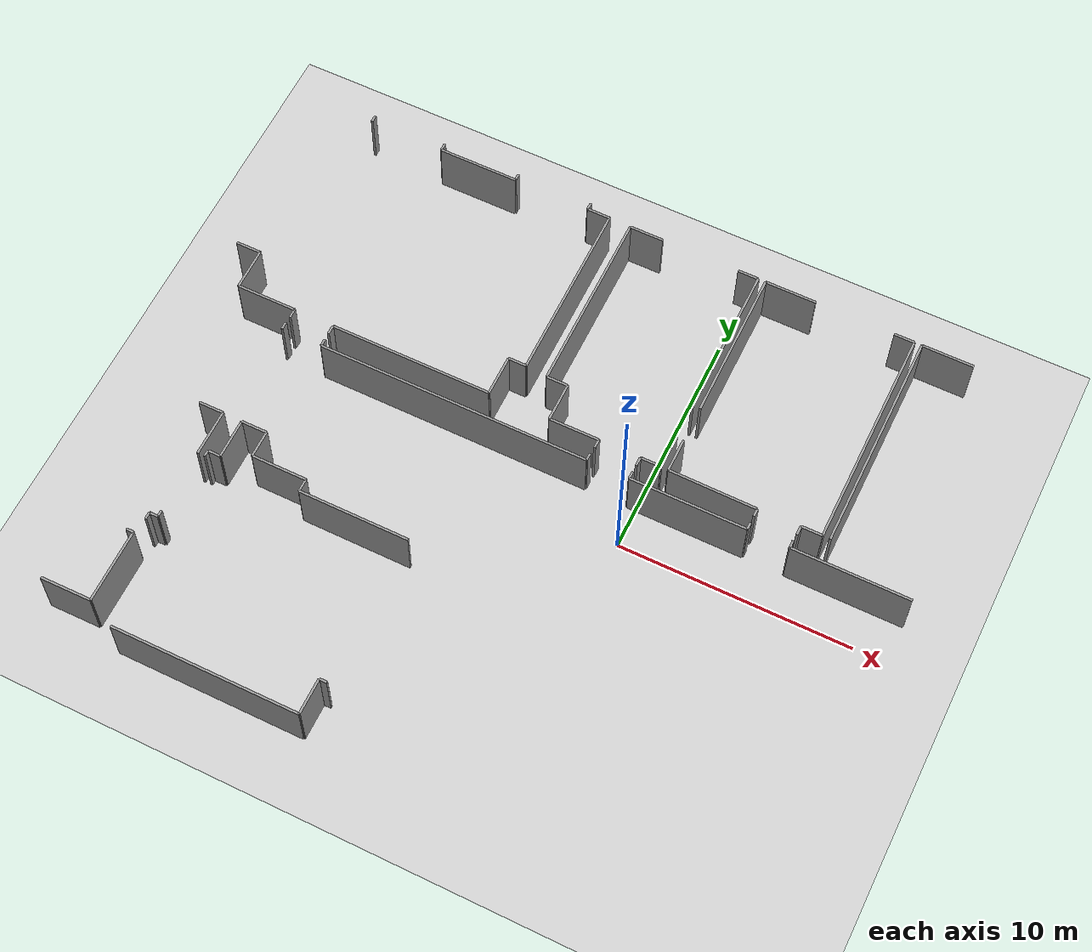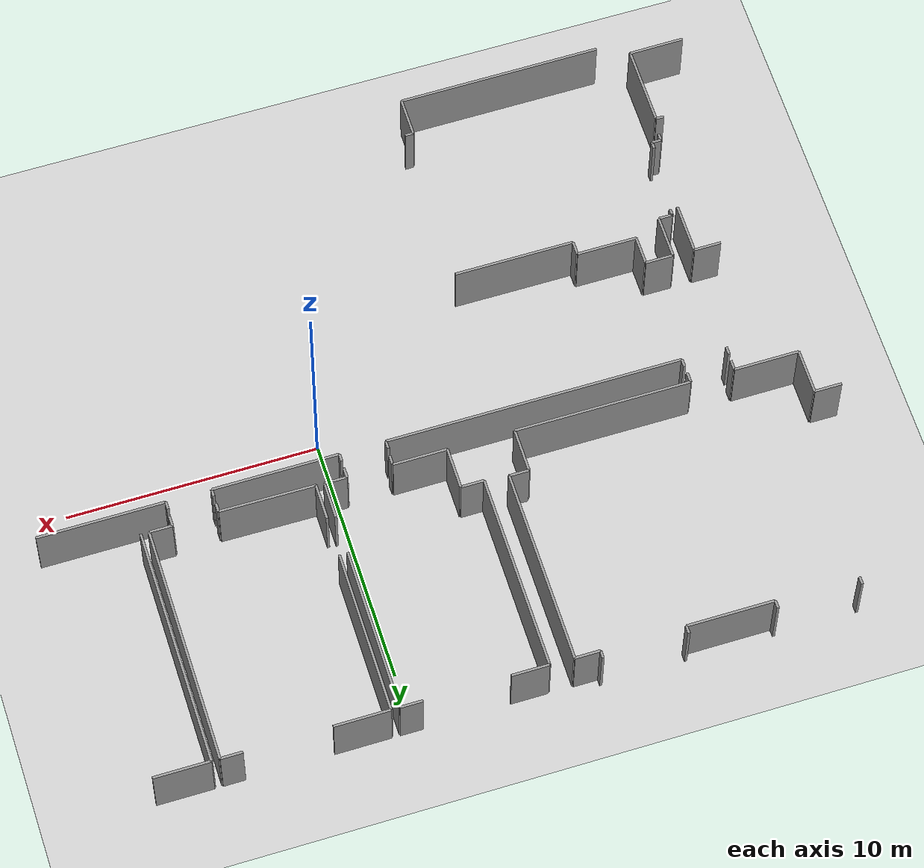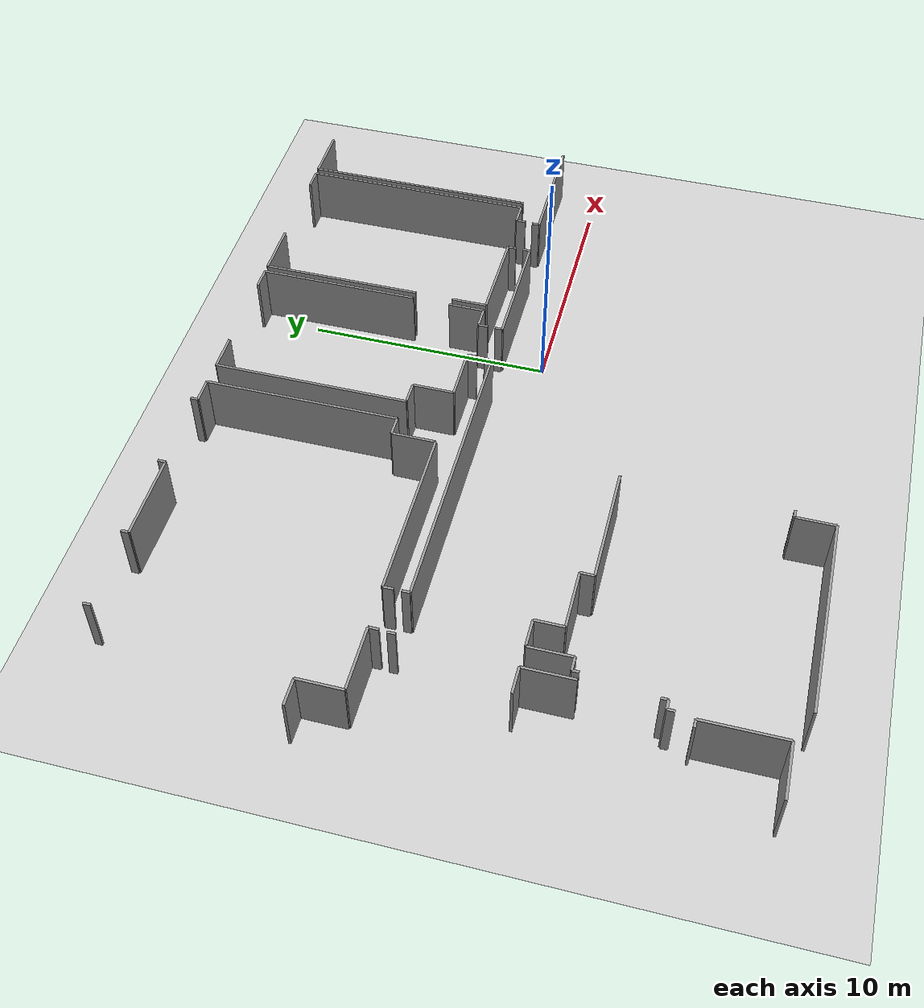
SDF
<sdf version="1.6">
 <world name="default">
  <model name="ground_plane">
   <static>1</static>
   <link name="link">
    <collision name="collision">
     <geometry><plane><normal>0 0 1</normal><size>100 100</size></plane></geometry>
     <surface><friction><ode><mu>100</mu><mu2>50</mu2></ode></friction></surface>
    </collision>
    <visual name="visual">
     <cast_shadows>0</cast_shadows>
     <geometry><plane><normal>0 0 1</normal><size>100 100</size></plane></geometry>
     <material>
      <script><uri>file://media/materials/scripts/gazebo.material</uri><name>Gazebo/Grey</name></script>
     </material>
    </visual>
   </link>
  </model>
  <model name="0510032198_A_40_1_106">
   <static>1</static>
   <link name="Wall_73">
    <collision name="Wall_73_Collision">
     <geometry><box><size>1.80411388787 0.1 2.5</size></box></geometry>
     <pose>0.902056943933 0 1.25 0 0 0</pose>
    </collision>
    <visual name="Wall_73_Visual">
     <pose>0.902056943933 0 1.25 0 0 0</pose>
     <geometry><box><size>1.80411388787 0.1 2.5</size></box></geometry>
     <material>
      <script><uri>file://media/materials/scripts/gazebo.material</uri><name>Gazebo/Grey</name></script>
      <ambient>1 1 1 1</ambient>
     </material>
    </visual>
    <pose>49.1753166728 -9.97713095072 0 0 0 1.57079632679</pose>
   </link>
   <link name="Wall_74">
    <collision name="Wall_74_Collision">
     <geometry><box><size>1.08869379614 0.1 2.5</size></box></geometry>
     <pose>0.544346898068 0 1.25 0 0 0</pose>
    </collision>
    <visual name="Wall_74_Visual">
     <pose>0.544346898068 0 1.25 0 0 0</pose>
     <geometry><box><size>1.08869379614 0.1 2.5</size></box></geometry>
     <material>
      <script><uri>file://media/materials/scripts/gazebo.material</uri><name>Gazebo/Grey</name></script>
      <ambient>1 1 1 1</ambient>
     </material>
    </visual>
    <pose>49.1753166728 -8.17301706285 0 0 0 3.14159265359</pose>
   </link>
   <link name="Wall_80">
    <collision name="Wall_80_Collision">
     <geometry><box><size>0.300727998069 0.1 2.5</size></box></geometry>
     <pose>0.150363999034 0 1.25 0 0 0</pose>
    </collision>
    <visual name="Wall_80_Visual">
     <pose>0.150363999034 0 1.25 0 0 0</pose>
     <geometry><box><size>0.300727998069 0.1 2.5</size></box></geometry>
     <material>
      <script><uri>file://media/materials/scripts/gazebo.material</uri><name>Gazebo/Grey</name></script>
      <ambient>1 1 1 1</ambient>
     </material>
    </visual>
    <pose>50.2251330852 -0.302633752176 0 0 0 1.57079632679</pose>
   </link>
   <link name="Wall_81">
    <collision name="Wall_81_Collision">
     <geometry><box><size>0.316101081198 0.1 2.5</size></box></geometry>
     <pose>0.158050540599 0 1.25 0 0 0</pose>
    </collision>
    <visual name="Wall_81_Visual">
     <pose>0.158050540599 0 1.25 0 0 0</pose>
     <geometry><box><size>0.316101081198 0.1 2.5</size></box></geometry>
     <material>
      <script><uri>file://media/materials/scripts/gazebo.material</uri><name>Gazebo/Grey</name></script>
      <ambient>1 1 1 1</ambient>
     </material>
    </visual>
    <pose>53.5400017787 -0.0019057541069 0 0 0 -1.57079632679</pose>
   </link>
   <link name="Wall_82">
    <collision name="Wall_82_Collision">
     <geometry><box><size>3.48219390413 0.1 2.5</size></box></geometry>
     <pose>1.74109695206 0 1.25 0 0 0</pose>
    </collision>
    <visual name="Wall_82_Visual">
     <pose>1.74109695206 0 1.25 0 0 0</pose>
     <geometry><box><size>3.48219390413 0.1 2.5</size></box></geometry>
     <material>
      <script><uri>file://media/materials/scripts/gazebo.material</uri><name>Gazebo/Grey</name></script>
      <ambient>1 1 1 1</ambient>
     </material>
    </visual>
    <pose>53.5400017787 -0.318006835305 0 0 0 0.0</pose>
   </link>
   <link name="Wall_83">
    <collision name="Wall_83_Collision">
     <geometry><box><size>0.307842813401 0.1 2.5</size></box></geometry>
     <pose>0.153921406701 0 1.25 0 0 0</pose>
    </collision>
    <visual name="Wall_83_Visual">
     <pose>0.153921406701 0 1.25 0 0 0</pose>
     <geometry><box><size>0.307842813401 0.1 2.5</size></box></geometry>
     <material>
      <script><uri>file://media/materials/scripts/gazebo.material</uri><name>Gazebo/Grey</name></script>
      <ambient>1 1 1 1</ambient>
     </material>
    </visual>
    <pose>57.0221956828 -0.318006835305 0 0 0 1.57079632679</pose>
   </link>
   <link name="Wall_84">
    <collision name="Wall_84_Collision">
     <geometry><box><size>0.29742469095 0.1 2.5</size></box></geometry>
     <pose>0.148712345475 0 1.25 0 0 0</pose>
    </collision>
    <visual name="Wall_84_Visual">
     <pose>0.148712345475 0 1.25 0 0 0</pose>
     <geometry><box><size>0.29742469095 0.1 2.5</size></box></geometry>
     <material>
      <script><uri>file://media/materials/scripts/gazebo.material</uri><name>Gazebo/Grey</name></script>
      <ambient>1 1 1 1</ambient>
     </material>
    </visual>
    <pose>60.3662859393 -0.0101640219035 0 0 0 -1.57079632679</pose>
   </link>
   <link name="Wall_85">
    <collision name="Wall_85_Collision">
     <geometry><box><size>1.00179140886 0.1 2.5</size></box></geometry>
     <pose>0.50089570443 0 1.25 0 0 0</pose>
    </collision>
    <visual name="Wall_85_Visual">
     <pose>0.50089570443 0 1.25 0 0 0</pose>
     <geometry><box><size>1.00179140886 0.1 2.5</size></box></geometry>
     <material>
      <script><uri>file://media/materials/scripts/gazebo.material</uri><name>Gazebo/Grey</name></script>
      <ambient>1 1 1 1</ambient>
     </material>
    </visual>
    <pose>60.3662859393 -0.307588712854 0 0 0 0.0</pose>
   </link>
   <link name="Wall_86">
    <collision name="Wall_86_Collision">
     <geometry><box><size>7.88931380147 0.1 2.5</size></box></geometry>
     <pose>3.94465690074 0 1.25 0 0 0</pose>
    </collision>
    <visual name="Wall_86_Visual">
     <pose>3.94465690074 0 1.25 0 0 0</pose>
     <geometry><box><size>7.88931380147 0.1 2.5</size></box></geometry>
     <material>
      <script><uri>file://media/materials/scripts/gazebo.material</uri><name>Gazebo/Grey</name></script>
      <ambient>1 1 1 1</ambient>
     </material>
    </visual>
    <pose>61.3680773482 -0.307588712854 0 0 0 -1.57079632679</pose>
   </link>
   <link name="Wall_87">
    <collision name="Wall_87_Collision">
     <geometry><box><size>0.784281340126 0.1 2.5</size></box></geometry>
     <pose>0.392140670063 0 1.25 0 0 0</pose>
    </collision>
    <visual name="Wall_87_Visual">
     <pose>0.392140670063 0 1.25 0 0 0</pose>
     <geometry><box><size>0.784281340126 0.1 2.5</size></box></geometry>
     <material>
      <script><uri>file://media/materials/scripts/gazebo.material</uri><name>Gazebo/Grey</name></script>
      <ambient>1 1 1 1</ambient>
     </material>
    </visual>
    <pose>61.3680773482 -8.19690251432 0 0 0 3.14159265359</pose>
   </link>
   <link name="Wall_88">
    <collision name="Wall_88_Collision">
     <geometry><box><size>1.76752340901 0.1 2.5</size></box></geometry>
     <pose>0.883761704506 0 1.25 0 0 0</pose>
    </collision>
    <visual name="Wall_88_Visual">
     <pose>0.883761704506 0 1.25 0 0 0</pose>
     <geometry><box><size>1.76752340901 0.1 2.5</size></box></geometry>
     <material>
      <script><uri>file://media/materials/scripts/gazebo.material</uri><name>Gazebo/Grey</name></script>
      <ambient>1 1 1 1</ambient>
     </material>
    </visual>
    <pose>60.5837960081 -8.19690251432 0 0 0 -1.57079632679</pose>
   </link>
   <link name="Wall_89">
    <collision name="Wall_89_Collision">
     <geometry><box><size>7.03922041952 0.1 2.5</size></box></geometry>
     <pose>3.51961020976 0 1.25 0 0 0</pose>
    </collision>
    <visual name="Wall_89_Visual">
     <pose>3.51961020976 0 1.25 0 0 0</pose>
     <geometry><box><size>7.03922041952 0.1 2.5</size></box></geometry>
     <material>
      <script><uri>file://media/materials/scripts/gazebo.material</uri><name>Gazebo/Grey</name></script>
      <ambient>1 1 1 1</ambient>
     </material>
    </visual>
    <pose>60.5837960081 -9.96442592334 0 0 0 3.14159265359</pose>
   </link>
   <link name="Wall_90">
    <collision name="Wall_90_Collision">
     <geometry><box><size>0.408847781067 0.1 2.5</size></box></geometry>
     <pose>0.204423890533 0 1.25 0 0 0</pose>
    </collision>
    <visual name="Wall_90_Visual">
     <pose>0.204423890533 0 1.25 0 0 0</pose>
     <geometry><box><size>0.408847781067 0.1 2.5</size></box></geometry>
     <material>
      <script><uri>file://media/materials/scripts/gazebo.material</uri><name>Gazebo/Grey</name></script>
      <ambient>1 1 1 1</ambient>
     </material>
    </visual>
    <pose>53.5445755886 -9.96442592334 0 0 0 -1.57079632679</pose>
   </link>
   <link name="Wall_91">
    <collision name="Wall_91_Collision">
     <geometry><box><size>0.401732965735 0.1 2.5</size></box></geometry>
     <pose>0.200866482867 0 1.25 0 0 0</pose>
    </collision>
    <visual name="Wall_91_Visual">
     <pose>0.200866482867 0 1.25 0 0 0</pose>
     <geometry><box><size>0.401732965735 0.1 2.5</size></box></geometry>
     <material>
      <script><uri>file://media/materials/scripts/gazebo.material</uri><name>Gazebo/Grey</name></script>
      <ambient>1 1 1 1</ambient>
     </material>
    </visual>
    <pose>51.7793390845 -10.3732737044 0 0 0 1.57079632679</pose>
   </link>
   <link name="Wall_92">
    <collision name="Wall_92_Collision">
     <geometry><box><size>2.60402841208 0.1 2.5</size></box></geometry>
     <pose>1.30201420604 0 1.25 0 0 0</pose>
    </collision>
    <visual name="Wall_92_Visual">
     <pose>1.30201420604 0 1.25 0 0 0</pose>
     <geometry><box><size>2.60402841208 0.1 2.5</size></box></geometry>
     <material>
      <script><uri>file://media/materials/scripts/gazebo.material</uri><name>Gazebo/Grey</name></script>
      <ambient>1 1 1 1</ambient>
     </material>
    </visual>
    <pose>51.7793390845 -9.97154073867 0 0 0 -3.13944589654</pose>
   </link>
   <link name="Wall_93">
    <collision name="Wall_93_Collision">
     <geometry><box><size>1.68023987092 0.1 2.5</size></box></geometry>
     <pose>0.840119935458 0 1.25 0 0 0</pose>
    </collision>
    <visual name="Wall_93_Visual">
     <pose>0.840119935458 0 1.25 0 0 0</pose>
     <geometry><box><size>1.68023987092 0.1 2.5</size></box></geometry>
     <material>
      <script><uri>file://media/materials/scripts/gazebo.material</uri><name>Gazebo/Grey</name></script>
      <ambient>1 1 1 1</ambient>
     </material>
    </visual>
    <pose>63.2545198135 -9.96658577799 0 0 0 1.57079632679</pose>
   </link>
   <link name="Wall_94">
    <collision name="Wall_94_Collision">
     <geometry><box><size>0.924163691573 0.1 2.5</size></box></geometry>
     <pose>0.462081845786 0 1.25 0 0 0</pose>
    </collision>
    <visual name="Wall_94_Visual">
     <pose>0.462081845786 0 1.25 0 0 0</pose>
     <geometry><box><size>0.924163691573 0.1 2.5</size></box></geometry>
     <material>
      <script><uri>file://media/materials/scripts/gazebo.material</uri><name>Gazebo/Grey</name></script>
      <ambient>1 1 1 1</ambient>
     </material>
    </visual>
    <pose>63.2545198135 -8.28634590708 0 0 0 3.14159265359</pose>
   </link>
   <link name="Wall_95">
    <collision name="Wall_95_Collision">
     <geometry><box><size>7.95233073727 0.1 2.5</size></box></geometry>
     <pose>3.97616536864 0 1.25 0 0 0</pose>
    </collision>
    <visual name="Wall_95_Visual">
     <pose>3.97616536864 0 1.25 0 0 0</pose>
     <geometry><box><size>7.95233073727 0.1 2.5</size></box></geometry>
     <material>
      <script><uri>file://media/materials/scripts/gazebo.material</uri><name>Gazebo/Grey</name></script>
      <ambient>1 1 1 1</ambient>
     </material>
    </visual>
    <pose>62.3303561219 -8.28634590708 0 0 0 1.57079632679</pose>
   </link>
   <link name="Wall_96">
    <collision name="Wall_96_Collision">
     <geometry><box><size>1.48115209188 0.1 2.5</size></box></geometry>
     <pose>0.740576045941 0 1.25 0 0 0</pose>
    </collision>
    <visual name="Wall_96_Visual">
     <pose>0.740576045941 0 1.25 0 0 0</pose>
     <geometry><box><size>1.48115209188 0.1 2.5</size></box></geometry>
     <material>
      <script><uri>file://media/materials/scripts/gazebo.material</uri><name>Gazebo/Grey</name></script>
      <ambient>1 1 1 1</ambient>
     </material>
    </visual>
    <pose>62.3303561219 -0.334015169803 0 0 0 0.0</pose>
   </link>
   <link name="Wall_97">
    <collision name="Wall_97_Collision">
     <geometry><box><size>0.893798676136 0.1 2.5</size></box></geometry>
     <pose>0.446899338068 0 1.25 0 0 0</pose>
    </collision>
    <visual name="Wall_97_Visual">
     <pose>0.446899338068 0 1.25 0 0 0</pose>
     <geometry><box><size>0.893798676136 0.1 2.5</size></box></geometry>
     <material>
      <script><uri>file://media/materials/scripts/gazebo.material</uri><name>Gazebo/Grey</name></script>
      <ambient>1 1 1 1</ambient>
     </material>
    </visual>
    <pose>67.2000660661 -0.334015169803 0 0 0 0.0</pose>
   </link>
   <link name="Wall_98">
    <collision name="Wall_98_Collision">
     <geometry><box><size>6.60140517603 0.1 2.5</size></box></geometry>
     <pose>3.30070258801 0 1.25 0 0 0</pose>
    </collision>
    <visual name="Wall_98_Visual">
     <pose>3.30070258801 0 1.25 0 0 0</pose>
     <geometry><box><size>6.60140517603 0.1 2.5</size></box></geometry>
     <material>
      <script><uri>file://media/materials/scripts/gazebo.material</uri><name>Gazebo/Grey</name></script>
      <ambient>1 1 1 1</ambient>
     </material>
    </visual>
    <pose>68.0938647423 -0.334015169803 0 0 0 -1.57079632679</pose>
   </link>
   <link name="Wall_99">
    <collision name="Wall_99_Collision">
     <geometry><box><size>1.4868693542 0.1 2.5</size></box></geometry>
     <pose>0.743434677102 0 1.25 0 0 0</pose>
    </collision>
    <visual name="Wall_99_Visual">
     <pose>0.743434677102 0 1.25 0 0 0</pose>
     <geometry><box><size>1.4868693542 0.1 2.5</size></box></geometry>
     <material>
      <script><uri>file://media/materials/scripts/gazebo.material</uri><name>Gazebo/Grey</name></script>
      <ambient>1 1 1 1</ambient>
     </material>
    </visual>
    <pose>68.0938647423 -8.47260160846 0 0 0 -1.57079632679</pose>
   </link>
   <link name="Wall_100">
    <collision name="Wall_100_Collision">
     <geometry><box><size>0.879060844376 0.1 2.5</size></box></geometry>
     <pose>0.439530422188 0 1.25 0 0 0</pose>
    </collision>
    <visual name="Wall_100_Visual">
     <pose>0.439530422188 0 1.25 0 0 0</pose>
     <geometry><box><size>0.879060844376 0.1 2.5</size></box></geometry>
     <material>
      <script><uri>file://media/materials/scripts/gazebo.material</uri><name>Gazebo/Grey</name></script>
      <ambient>1 1 1 1</ambient>
     </material>
    </visual>
    <pose>68.0938647423 -9.95947096266 0 0 0 3.14159265359</pose>
   </link>
   <link name="Wall_101">
    <collision name="Wall_101_Collision">
     <geometry><box><size>0.397667356973 0.1 2.5</size></box></geometry>
     <pose>0.198833678487 0 1.25 0 0 0</pose>
    </collision>
    <visual name="Wall_101_Visual">
     <pose>0.198833678487 0 1.25 0 0 0</pose>
     <geometry><box><size>0.397667356973 0.1 2.5</size></box></geometry>
     <material>
      <script><uri>file://media/materials/scripts/gazebo.material</uri><name>Gazebo/Grey</name></script>
      <ambient>1 1 1 1</ambient>
     </material>
    </visual>
    <pose>67.2148038979 -9.95947096266 0 0 0 -1.57079632679</pose>
   </link>
   <link name="Wall_102">
    <collision name="Wall_102_Collision">
     <geometry><box><size>0.397667356973 0.1 2.5</size></box></geometry>
     <pose>0.198833678487 0 1.25 0 0 0</pose>
    </collision>
    <visual name="Wall_102_Visual">
     <pose>0.198833678487 0 1.25 0 0 0</pose>
     <geometry><box><size>0.397667356973 0.1 2.5</size></box></geometry>
     <material>
      <script><uri>file://media/materials/scripts/gazebo.material</uri><name>Gazebo/Grey</name></script>
      <ambient>1 1 1 1</ambient>
     </material>
    </visual>
    <pose>65.4139933172 -10.3571383196 0 0 0 1.57079632679</pose>
   </link>
   <link name="Wall_103">
    <collision name="Wall_103_Collision">
     <geometry><box><size>2.15948522422 0.1 2.5</size></box></geometry>
     <pose>1.07974261211 0 1.25 0 0 0</pose>
    </collision>
    <visual name="Wall_103_Visual">
     <pose>1.07974261211 0 1.25 0 0 0</pose>
     <geometry><box><size>2.15948522422 0.1 2.5</size></box></geometry>
     <material>
      <script><uri>file://media/materials/scripts/gazebo.material</uri><name>Gazebo/Grey</name></script>
      <ambient>1 1 1 1</ambient>
     </material>
    </visual>
    <pose>65.4139933172 -9.95947096266 0 0 0 -3.13829796645</pose>
   </link>
   <link name="Wall_104">
    <collision name="Wall_104_Collision">
     <geometry><box><size>1.46107814862 0.1 2.5</size></box></geometry>
     <pose>0.730539074312 0 1.25 0 0 0</pose>
    </collision>
    <visual name="Wall_104_Visual">
     <pose>0.730539074312 0 1.25 0 0 0</pose>
     <geometry><box><size>1.46107814862 0.1 2.5</size></box></geometry>
     <material>
      <script><uri>file://media/materials/scripts/gazebo.material</uri><name>Gazebo/Grey</name></script>
      <ambient>1 1 1 1</ambient>
     </material>
    </visual>
    <pose>68.4234331525 -9.97713095072 0 0 0 1.57079632679</pose>
   </link>
   <link name="Wall_105">
    <collision name="Wall_105_Collision">
     <geometry><box><size>6.59111410385 0.1 2.5</size></box></geometry>
     <pose>3.29555705193 0 1.25 0 0 0</pose>
    </collision>
    <visual name="Wall_105_Visual">
     <pose>3.29555705193 0 1.25 0 0 0</pose>
     <geometry><box><size>6.59111410385 0.1 2.5</size></box></geometry>
     <material>
      <script><uri>file://media/materials/scripts/gazebo.material</uri><name>Gazebo/Grey</name></script>
      <ambient>1 1 1 1</ambient>
     </material>
    </visual>
    <pose>68.4234331525 -6.92792437968 0 0 0 1.57079632679</pose>
   </link>
   <link name="Wall_106">
    <collision name="Wall_106_Collision">
     <geometry><box><size>2.21613792578 0.1 2.5</size></box></geometry>
     <pose>1.10806896289 0 1.25 0 0 0</pose>
    </collision>
    <visual name="Wall_106_Visual">
     <pose>1.10806896289 0 1.25 0 0 0</pose>
     <geometry><box><size>2.21613792578 0.1 2.5</size></box></geometry>
     <material>
      <script><uri>file://media/materials/scripts/gazebo.material</uri><name>Gazebo/Grey</name></script>
      <ambient>1 1 1 1</ambient>
     </material>
    </visual>
    <pose>68.4234331525 -0.336810275826 0 0 0 0.0</pose>
   </link>
   <link name="Wall_107">
    <collision name="Wall_107_Collision">
     <geometry><box><size>0.87283538096 0.1 2.5</size></box></geometry>
     <pose>0.43641769048 0 1.25 0 0 0</pose>
    </collision>
    <visual name="Wall_107_Visual">
     <pose>0.43641769048 0 1.25 0 0 0</pose>
     <geometry><box><size>0.87283538096 0.1 2.5</size></box></geometry>
     <material>
      <script><uri>file://media/materials/scripts/gazebo.material</uri><name>Gazebo/Grey</name></script>
      <ambient>1 1 1 1</ambient>
     </material>
    </visual>
    <pose>74.0644653089 -0.336810275826 0 0 0 0.0</pose>
   </link>
   <link name="Wall_108">
    <collision name="Wall_108_Collision">
     <geometry><box><size>9.61503767041 0.1 2.5</size></box></geometry>
     <pose>4.8075188352 0 1.25 0 0 0</pose>
    </collision>
    <visual name="Wall_108_Visual">
     <pose>4.8075188352 0 1.25 0 0 0</pose>
     <geometry><box><size>9.61503767041 0.1 2.5</size></box></geometry>
     <material>
      <script><uri>file://media/materials/scripts/gazebo.material</uri><name>Gazebo/Grey</name></script>
      <ambient>1 1 1 1</ambient>
     </material>
    </visual>
    <pose>74.9373006899 -0.336810275826 0 0 0 -1.57079632679</pose>
   </link>
   <link name="Wall_109">
    <collision name="Wall_109_Collision">
     <geometry><box><size>0.900659390921 0.1 2.5</size></box></geometry>
     <pose>0.45032969546 0 1.25 0 0 0</pose>
    </collision>
    <visual name="Wall_109_Visual">
     <pose>0.45032969546 0 1.25 0 0 0</pose>
     <geometry><box><size>0.900659390921 0.1 2.5</size></box></geometry>
     <material>
      <script><uri>file://media/materials/scripts/gazebo.material</uri><name>Gazebo/Grey</name></script>
      <ambient>1 1 1 1</ambient>
     </material>
    </visual>
    <pose>74.9373006899 -9.95184794623 0 0 0 3.14159265359</pose>
   </link>
   <link name="Wall_110">
    <collision name="Wall_110_Collision">
     <geometry><box><size>0.406814976686 0.1 2.5</size></box></geometry>
     <pose>0.203407488343 0 1.25 0 0 0</pose>
    </collision>
    <visual name="Wall_110_Visual">
     <pose>0.203407488343 0 1.25 0 0 0</pose>
     <geometry><box><size>0.406814976686 0.1 2.5</size></box></geometry>
     <material>
      <script><uri>file://media/materials/scripts/gazebo.material</uri><name>Gazebo/Grey</name></script>
      <ambient>1 1 1 1</ambient>
     </material>
    </visual>
    <pose>74.036641299 -9.95184794623 0 0 0 -1.57079632679</pose>
   </link>
   <link name="Wall_111">
    <collision name="Wall_111_Collision">
     <geometry><box><size>0.347355448551 0.1 2.5</size></box></geometry>
     <pose>0.173677724275 0 1.25 0 0 0</pose>
    </collision>
    <visual name="Wall_111_Visual">
     <pose>0.173677724275 0 1.25 0 0 0</pose>
     <geometry><box><size>0.347355448551 0.1 2.5</size></box></geometry>
     <material>
      <script><uri>file://media/materials/scripts/gazebo.material</uri><name>Gazebo/Grey</name></script>
      <ambient>1 1 1 1</ambient>
     </material>
    </visual>
    <pose>72.2252855455 -10.3586629229 0 0 0 1.57079632679</pose>
   </link>
   <link name="Wall_112">
    <collision name="Wall_112_Collision">
     <geometry><box><size>3.80200600379 0.1 2.5</size></box></geometry>
     <pose>1.9010030019 0 1.25 0 0 0</pose>
    </collision>
    <visual name="Wall_112_Visual">
     <pose>1.9010030019 0 1.25 0 0 0</pose>
     <geometry><box><size>3.80200600379 0.1 2.5</size></box></geometry>
     <material>
      <script><uri>file://media/materials/scripts/gazebo.material</uri><name>Gazebo/Grey</name></script>
      <ambient>1 1 1 1</ambient>
     </material>
    </visual>
    <pose>72.2252855455 -10.0113074744 0 0 0 3.13260345581</pose>
   </link>
   <link name="Wall_113">
    <collision name="Wall_113_Collision">
     <geometry><box><size>9.63371406065 0.1 2.5</size></box></geometry>
     <pose>4.81685703033 0 1.25 0 0 0</pose>
    </collision>
    <visual name="Wall_113_Visual">
     <pose>4.81685703033 0 1.25 0 0 0</pose>
     <geometry><box><size>9.63371406065 0.1 2.5</size></box></geometry>
     <material>
      <script><uri>file://media/materials/scripts/gazebo.material</uri><name>Gazebo/Grey</name></script>
      <ambient>1 1 1 1</ambient>
     </material>
    </visual>
    <pose>75.2575944301 -9.97052433648 0 0 0 1.57079632679</pose>
   </link>
   <link name="Wall_114">
    <collision name="Wall_114_Collision">
     <geometry><box><size>2.23176510945 0.1 2.5</size></box></geometry>
     <pose>1.11588255473 0 1.25 0 0 0</pose>
    </collision>
    <visual name="Wall_114_Visual">
     <pose>1.11588255473 0 1.25 0 0 0</pose>
     <geometry><box><size>2.23176510945 0.1 2.5</size></box></geometry>
     <material>
      <script><uri>file://media/materials/scripts/gazebo.material</uri><name>Gazebo/Grey</name></script>
      <ambient>1 1 1 1</ambient>
     </material>
    </visual>
    <pose>75.2575944301 -0.336810275826 0 0 0 0.0</pose>
   </link>
   <link name="Wall_214">
    <collision name="Wall_214_Collision">
     <geometry><box><size>0.265153921407 0.1 2.5</size></box></geometry>
     <pose>0.132576960703 0 1.25 0 0 0</pose>
    </collision>
    <visual name="Wall_214_Visual">
     <pose>0.132576960703 0 1.25 0 0 0</pose>
     <geometry><box><size>0.265153921407 0.1 2.5</size></box></geometry>
     <material>
      <script><uri>file://media/materials/scripts/gazebo.material</uri><name>Gazebo/Grey</name></script>
      <ambient>1 1 1 1</ambient>
     </material>
    </visual>
    <pose>51.8361305569 -17.4168138332 0 0 0 1.57079632679</pose>
   </link>
   <link name="Wall_215">
    <collision name="Wall_215_Collision">
     <geometry><box><size>0.552414590453 0.1 2.5</size></box></geometry>
     <pose>0.276207295227 0 1.25 0 0 0</pose>
    </collision>
    <visual name="Wall_215_Visual">
     <pose>0.276207295227 0 1.25 0 0 0</pose>
     <geometry><box><size>0.552414590453 0.1 2.5</size></box></geometry>
     <material>
      <script><uri>file://media/materials/scripts/gazebo.material</uri><name>Gazebo/Grey</name></script>
      <ambient>1 1 1 1</ambient>
     </material>
    </visual>
    <pose>51.8361305569 -17.1516599118 0 0 0 0.0</pose>
   </link>
   <link name="Wall_216">
    <collision name="Wall_216_Collision">
     <geometry><box><size>1.72254761209 0.1 2.5</size></box></geometry>
     <pose>0.861273806045 0 1.25 0 0 0</pose>
    </collision>
    <visual name="Wall_216_Visual">
     <pose>0.861273806045 0 1.25 0 0 0</pose>
     <geometry><box><size>1.72254761209 0.1 2.5</size></box></geometry>
     <material>
      <script><uri>file://media/materials/scripts/gazebo.material</uri><name>Gazebo/Grey</name></script>
      <ambient>1 1 1 1</ambient>
     </material>
    </visual>
    <pose>52.3885451473 -17.1516599118 0 0 0 1.57079632679</pose>
   </link>
   <link name="Wall_217">
    <collision name="Wall_217_Collision">
     <geometry><box><size>1.11969406294 0.1 2.5</size></box></geometry>
     <pose>0.55984703147 0 1.25 0 0 0</pose>
    </collision>
    <visual name="Wall_217_Visual">
     <pose>0.55984703147 0 1.25 0 0 0</pose>
     <geometry><box><size>1.11969406294 0.1 2.5</size></box></geometry>
     <material>
      <script><uri>file://media/materials/scripts/gazebo.material</uri><name>Gazebo/Grey</name></script>
      <ambient>1 1 1 1</ambient>
     </material>
    </visual>
    <pose>52.3885451473 -15.4291122997 0 0 0 0.0</pose>
   </link>
   <link name="Wall_218">
    <collision name="Wall_218_Collision">
     <geometry><box><size>1.15501403906 0.1 2.5</size></box></geometry>
     <pose>0.577507019528 0 1.25 0 0 0</pose>
    </collision>
    <visual name="Wall_218_Visual">
     <pose>0.577507019528 0 1.25 0 0 0</pose>
     <geometry><box><size>1.15501403906 0.1 2.5</size></box></geometry>
     <material>
      <script><uri>file://media/materials/scripts/gazebo.material</uri><name>Gazebo/Grey</name></script>
      <ambient>1 1 1 1</ambient>
     </material>
    </visual>
    <pose>53.5082392103 -15.4291122997 0 0 0 -1.57079632679</pose>
   </link>
   <link name="Wall_219">
    <collision name="Wall_219_Collision">
     <geometry><box><size>2.39591406319 0.1 2.5</size></box></geometry>
     <pose>1.1979570316 0 1.25 0 0 0</pose>
    </collision>
    <visual name="Wall_219_Visual">
     <pose>1.1979570316 0 1.25 0 0 0</pose>
     <geometry><box><size>2.39591406319 0.1 2.5</size></box></geometry>
     <material>
      <script><uri>file://media/materials/scripts/gazebo.material</uri><name>Gazebo/Grey</name></script>
      <ambient>1 1 1 1</ambient>
     </material>
    </visual>
    <pose>53.5082392103 -16.5841263388 0 0 0 0.0</pose>
   </link>
   <link name="Wall_220">
    <collision name="Wall_220_Collision">
     <geometry><box><size>0.550381786073 0.1 2.5</size></box></geometry>
     <pose>0.275190893036 0 1.25 0 0 0</pose>
    </collision>
    <visual name="Wall_220_Visual">
     <pose>0.275190893036 0 1.25 0 0 0</pose>
     <geometry><box><size>0.550381786073 0.1 2.5</size></box></geometry>
     <material>
      <script><uri>file://media/materials/scripts/gazebo.material</uri><name>Gazebo/Grey</name></script>
      <ambient>1 1 1 1</ambient>
     </material>
    </visual>
    <pose>55.9041532735 -16.5841263388 0 0 0 -1.57079632679</pose>
   </link>
   <link name="Wall_221">
    <collision name="Wall_221_Collision">
     <geometry><box><size>4.77988540065 0.1 2.5</size></box></geometry>
     <pose>2.38994270033 0 1.25 0 0 0</pose>
    </collision>
    <visual name="Wall_221_Visual">
     <pose>2.38994270033 0 1.25 0 0 0</pose>
     <geometry><box><size>4.77988540065 0.1 2.5</size></box></geometry>
     <material>
      <script><uri>file://media/materials/scripts/gazebo.material</uri><name>Gazebo/Grey</name></script>
      <ambient>1 1 1 1</ambient>
     </material>
    </visual>
    <pose>55.9041532735 -17.1345081249 0 0 0 0.0</pose>
   </link>
   <link name="Wall_222">
    <collision name="Wall_222_Collision">
     <geometry><box><size>0.331093013505 0.1 2.5</size></box></geometry>
     <pose>0.165546506753 0 1.25 0 0 0</pose>
    </collision>
    <visual name="Wall_222_Visual">
     <pose>0.165546506753 0 1.25 0 0 0</pose>
     <geometry><box><size>0.331093013505 0.1 2.5</size></box></geometry>
     <material>
      <script><uri>file://media/materials/scripts/gazebo.material</uri><name>Gazebo/Grey</name></script>
      <ambient>1 1 1 1</ambient>
     </material>
    </visual>
    <pose>60.6840386741 -23.7065646876 0 0 0 3.14159265359</pose>
   </link>
   <link name="Wall_223">
    <collision name="Wall_223_Collision">
     <geometry><box><size>1.56043146273 0.1 2.5</size></box></geometry>
     <pose>0.780215731365 0 1.25 0 0 0</pose>
    </collision>
    <visual name="Wall_223_Visual">
     <pose>0.780215731365 0 1.25 0 0 0</pose>
     <geometry><box><size>1.56043146273 0.1 2.5</size></box></geometry>
     <material>
      <script><uri>file://media/materials/scripts/gazebo.material</uri><name>Gazebo/Grey</name></script>
      <ambient>1 1 1 1</ambient>
     </material>
    </visual>
    <pose>60.3529456606 -23.7065646876 0 0 0 -1.57079632679</pose>
   </link>
   <link name="Wall_224">
    <collision name="Wall_224_Collision">
     <geometry><box><size>8.10406248165 0.1 2.5</size></box></geometry>
     <pose>4.05203124083 0 1.25 0 0 0</pose>
    </collision>
    <visual name="Wall_224_Visual">
     <pose>4.05203124083 0 1.25 0 0 0</pose>
     <geometry><box><size>8.10406248165 0.1 2.5</size></box></geometry>
     <material>
      <script><uri>file://media/materials/scripts/gazebo.material</uri><name>Gazebo/Grey</name></script>
      <ambient>1 1 1 1</ambient>
     </material>
    </visual>
    <pose>60.3529456606 -25.2669961504 0 0 0 -3.13870801606</pose>
   </link>
   <link name="Wall_227">
    <collision name="Wall_227_Collision">
     <geometry><box><size>0.319658488864 0.1 2.5</size></box></geometry>
     <pose>0.159829244432 0 1.25 0 0 0</pose>
    </collision>
    <visual name="Wall_227_Visual">
     <pose>0.159829244432 0 1.25 0 0 0</pose>
     <geometry><box><size>0.319658488864 0.1 2.5</size></box></geometry>
     <material>
      <script><uri>file://media/materials/scripts/gazebo.material</uri><name>Gazebo/Grey</name></script>
      <ambient>1 1 1 1</ambient>
     </material>
    </visual>
    <pose>50.7042396676 -21.5091031521 0 0 0 0.0</pose>
   </link>
   <link name="Wall_228">
    <collision name="Wall_228_Collision">
     <geometry><box><size>3.18896187221 0.1 2.5</size></box></geometry>
     <pose>1.59448093611 0 1.25 0 0 0</pose>
    </collision>
    <visual name="Wall_228_Visual">
     <pose>1.59448093611 0 1.25 0 0 0</pose>
     <geometry><box><size>3.18896187221 0.1 2.5</size></box></geometry>
     <material>
      <script><uri>file://media/materials/scripts/gazebo.material</uri><name>Gazebo/Grey</name></script>
      <ambient>1 1 1 1</ambient>
     </material>
    </visual>
    <pose>51.0238981565 -21.5091031521 0 0 0 -1.57079632679</pose>
   </link>
   <link name="Wall_229">
    <collision name="Wall_229_Collision">
     <geometry><box><size>2.19388591416 0.1 2.5</size></box></geometry>
     <pose>1.09694295708 0 1.25 0 0 0</pose>
    </collision>
    <visual name="Wall_229_Visual">
     <pose>1.09694295708 0 1.25 0 0 0</pose>
     <geometry><box><size>2.19388591416 0.1 2.5</size></box></geometry>
     <material>
      <script><uri>file://media/materials/scripts/gazebo.material</uri><name>Gazebo/Grey</name></script>
      <ambient>1 1 1 1</ambient>
     </material>
    </visual>
    <pose>51.0238981565 -24.6980650243 0 0 0 -3.13163178538</pose>
   </link>
   <link name="Wall_241">
    <collision name="Wall_241_Collision">
     <geometry><box><size>1.07764042232 0.1 2.5</size></box></geometry>
     <pose>0.538820211158 0 1.25 0 0 0</pose>
    </collision>
    <visual name="Wall_241_Visual">
     <pose>0.538820211158 0 1.25 0 0 0</pose>
     <geometry><box><size>1.07764042232 0.1 2.5</size></box></geometry>
     <material>
      <script><uri>file://media/materials/scripts/gazebo.material</uri><name>Gazebo/Grey</name></script>
      <ambient>1 1 1 1</ambient>
     </material>
    </visual>
    <pose>50.4507743714 -15.4101818089 0 0 0 0.0</pose>
   </link>
   <link name="Wall_242">
    <collision name="Wall_242_Collision">
     <geometry><box><size>2.01819359921 0.1 2.5</size></box></geometry>
     <pose>1.0090967996 0 1.25 0 0 0</pose>
    </collision>
    <visual name="Wall_242_Visual">
     <pose>1.0090967996 0 1.25 0 0 0</pose>
     <geometry><box><size>2.01819359921 0.1 2.5</size></box></geometry>
     <material>
      <script><uri>file://media/materials/scripts/gazebo.material</uri><name>Gazebo/Grey</name></script>
      <ambient>1 1 1 1</ambient>
     </material>
    </visual>
    <pose>51.5284147937 -15.4101818089 0 0 0 -1.57079632679</pose>
   </link>
   <link name="Wall_243">
    <collision name="Wall_243_Collision">
     <geometry><box><size>0.271506435096 0.1 2.5</size></box></geometry>
     <pose>0.135753217548 0 1.25 0 0 0</pose>
    </collision>
    <visual name="Wall_243_Visual">
     <pose>0.135753217548 0 1.25 0 0 0</pose>
     <geometry><box><size>0.271506435096 0.1 2.5</size></box></geometry>
     <material>
      <script><uri>file://media/materials/scripts/gazebo.material</uri><name>Gazebo/Grey</name></script>
      <ambient>1 1 1 1</ambient>
     </material>
    </visual>
    <pose>51.5284147937 -20.2424119224 0 0 0 -1.57079632679</pose>
   </link>
   <link name="Wall_244">
    <collision name="Wall_244_Collision">
     <geometry><box><size>0.374417156869 0.1 2.5</size></box></geometry>
     <pose>0.187208578434 0 1.25 0 0 0</pose>
    </collision>
    <visual name="Wall_244_Visual">
     <pose>0.187208578434 0 1.25 0 0 0</pose>
     <geometry><box><size>0.374417156869 0.1 2.5</size></box></geometry>
     <material>
      <script><uri>file://media/materials/scripts/gazebo.material</uri><name>Gazebo/Grey</name></script>
      <ambient>1 1 1 1</ambient>
     </material>
    </visual>
    <pose>51.5284147937 -20.5139183575 0 0 0 3.14159265359</pose>
   </link>
   <link name="Wall_245">
    <collision name="Wall_245_Collision">
     <geometry><box><size>0.290563976165 0.1 2.5</size></box></geometry>
     <pose>0.145281988083 0 1.25 0 0 0</pose>
    </collision>
    <visual name="Wall_245_Visual">
     <pose>0.145281988083 0 1.25 0 0 0</pose>
     <geometry><box><size>0.290563976165 0.1 2.5</size></box></geometry>
     <material>
      <script><uri>file://media/materials/scripts/gazebo.material</uri><name>Gazebo/Grey</name></script>
      <ambient>1 1 1 1</ambient>
     </material>
    </visual>
    <pose>51.1539976369 -20.5139183575 0 0 0 -1.57079632679</pose>
   </link>
   <link name="Wall_329">
    <collision name="Wall_329_Collision">
     <geometry><box><size>0.31953143859 0.1 2.5</size></box></geometry>
     <pose>0.159765719295 0 1.25 0 0 0</pose>
    </collision>
    <visual name="Wall_329_Visual">
     <pose>0.159765719295 0 1.25 0 0 0</pose>
     <geometry><box><size>0.31953143859 0.1 2.5</size></box></geometry>
     <material>
      <script><uri>file://media/materials/scripts/gazebo.material</uri><name>Gazebo/Grey</name></script>
      <ambient>1 1 1 1</ambient>
     </material>
    </visual>
    <pose>51.7502445718 -10.9833691192 0 0 0 1.57079632679</pose>
   </link>
   <link name="Wall_330">
    <collision name="Wall_330_Collision">
     <geometry><box><size>0.317752734757 0.1 2.5</size></box></geometry>
     <pose>0.158876367379 0 1.25 0 0 0</pose>
    </collision>
    <visual name="Wall_330_Visual">
     <pose>0.158876367379 0 1.25 0 0 0</pose>
     <geometry><box><size>0.317752734757 0.1 2.5</size></box></geometry>
     <material>
      <script><uri>file://media/materials/scripts/gazebo.material</uri><name>Gazebo/Grey</name></script>
      <ambient>1 1 1 1</ambient>
     </material>
    </visual>
    <pose>53.5495305492 -10.6638376806 0 0 0 -1.57079632679</pose>
   </link>
   <link name="Wall_331">
    <collision name="Wall_331_Collision">
     <geometry><box><size>11.8210115743 0.1 2.5</size></box></geometry>
     <pose>5.91050578714 0 1.25 0 0 0</pose>
    </collision>
    <visual name="Wall_331_Visual">
     <pose>5.91050578714 0 1.25 0 0 0</pose>
     <geometry><box><size>11.8210115743 0.1 2.5</size></box></geometry>
     <material>
      <script><uri>file://media/materials/scripts/gazebo.material</uri><name>Gazebo/Grey</name></script>
      <ambient>1 1 1 1</ambient>
     </material>
    </visual>
    <pose>53.5495305492 -10.9815904153 0 0 0 0.0</pose>
   </link>
   <link name="Wall_332">
    <collision name="Wall_332_Collision">
     <geometry><box><size>0.312035472436 0.1 2.5</size></box></geometry>
     <pose>0.156017736218 0 1.25 0 0 0</pose>
    </collision>
    <visual name="Wall_332_Visual">
     <pose>0.156017736218 0 1.25 0 0 0</pose>
     <geometry><box><size>0.312035472436 0.1 2.5</size></box></geometry>
     <material>
      <script><uri>file://media/materials/scripts/gazebo.material</uri><name>Gazebo/Grey</name></script>
      <ambient>1 1 1 1</ambient>
     </material>
    </visual>
    <pose>65.3705421235 -10.9815904153 0 0 0 1.57079632679</pose>
   </link>
   <link name="Wall_333">
    <collision name="Wall_333_Collision">
     <geometry><box><size>0.304920657104 0.1 2.5</size></box></geometry>
     <pose>0.152460328552 0 1.25 0 0 0</pose>
    </collision>
    <visual name="Wall_333_Visual">
     <pose>0.152460328552 0 1.25 0 0 0</pose>
     <geometry><box><size>0.304920657104 0.1 2.5</size></box></geometry>
     <material>
      <script><uri>file://media/materials/scripts/gazebo.material</uri><name>Gazebo/Grey</name></script>
      <ambient>1 1 1 1</ambient>
     </material>
    </visual>
    <pose>67.2079431831 -10.6695549429 0 0 0 -1.57079632679</pose>
   </link>
   <link name="Wall_334">
    <collision name="Wall_334_Collision">
     <geometry><box><size>5.01200625087 0.1 2.5</size></box></geometry>
     <pose>2.50600312544 0 1.25 0 0 0</pose>
    </collision>
    <visual name="Wall_334_Visual">
     <pose>2.50600312544 0 1.25 0 0 0</pose>
     <geometry><box><size>5.01200625087 0.1 2.5</size></box></geometry>
     <material>
      <script><uri>file://media/materials/scripts/gazebo.material</uri><name>Gazebo/Grey</name></script>
      <ambient>1 1 1 1</ambient>
     </material>
    </visual>
    <pose>67.2079431831 -10.9744756 0 0 0 0.0</pose>
   </link>
   <link name="Wall_335">
    <collision name="Wall_335_Collision">
     <geometry><box><size>0.301871450533 0.1 2.5</size></box></geometry>
     <pose>0.150935725266 0 1.25 0 0 0</pose>
    </collision>
    <visual name="Wall_335_Visual">
     <pose>0.150935725266 0 1.25 0 0 0</pose>
     <geometry><box><size>0.301871450533 0.1 2.5</size></box></geometry>
     <material>
      <script><uri>file://media/materials/scripts/gazebo.material</uri><name>Gazebo/Grey</name></script>
      <ambient>1 1 1 1</ambient>
     </material>
    </visual>
    <pose>72.219949434 -10.9744756 0 0 0 1.57079632679</pose>
   </link>
   <link name="Wall_336">
    <collision name="Wall_336_Collision">
     <geometry><box><size>0.307334612306 0.1 2.5</size></box></geometry>
     <pose>0.153667306153 0 1.25 0 0 0</pose>
    </collision>
    <visual name="Wall_336_Visual">
     <pose>0.153667306153 0 1.25 0 0 0</pose>
     <geometry><box><size>0.307334612306 0.1 2.5</size></box></geometry>
     <material>
      <script><uri>file://media/materials/scripts/gazebo.material</uri><name>Gazebo/Grey</name></script>
      <ambient>1 1 1 1</ambient>
     </material>
    </visual>
    <pose>74.0024647753 -10.6726041495 0 0 0 -1.57079632679</pose>
   </link>
   <link name="Wall_337">
    <collision name="Wall_337_Collision">
     <geometry><box><size>5.04770737781 0.1 2.5</size></box></geometry>
     <pose>2.5238536889 0 1.25 0 0 0</pose>
    </collision>
    <visual name="Wall_337_Visual">
     <pose>2.5238536889 0 1.25 0 0 0</pose>
     <geometry><box><size>5.04770737781 0.1 2.5</size></box></geometry>
     <material>
      <script><uri>file://media/materials/scripts/gazebo.material</uri><name>Gazebo/Grey</name></script>
      <ambient>1 1 1 1</ambient>
     </material>
    </visual>
    <pose>74.0024647753 -10.9799387618 0 0 0 0.0</pose>
   </link>
   <pose>-67.6 12.6852799553 0 0 0 0</pose>
  </model>
 </world>
</sdf>
